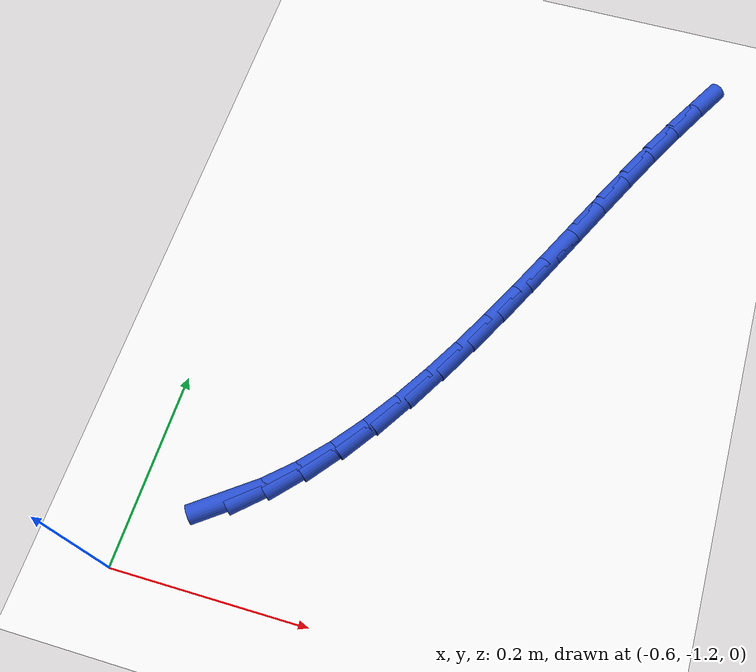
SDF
<sdf version="1.6">
 <world name="default">
  <model name="ground_plane">
   <static>1</static>
   <link name="link">
    <collision name="collision">
     <geometry><plane><normal>0 0 1</normal><size>100 100</size></plane></geometry>
     <surface><friction><ode><mu>100</mu><mu2>50</mu2></ode></friction></surface>
    </collision>
    <visual name="visual">
     <cast_shadows>0</cast_shadows>
     <geometry><plane><normal>0 0 1</normal><size>100 100</size></plane></geometry>
     <material>
      <script><uri>file://media/materials/scripts/gazebo.material</uri><name>Gazebo/WhiteGlow</name></script>
     </material>
    </visual>
   </link>
  </model>
  <model name="line">
   <link name="link_169">
    <pose>-0.5123955180694747 -1.110039654873815 0.01 0 1.57 0.6425896060567059</pose>
    <collision name="collision">
     <geometry><cylinder><radius>0.01</radius><length>0.08</length></cylinder></geometry>
    </collision>
    <visual name="visual">
     <material>
      <script><name>Gazebo/Blue</name><uri>file://media/materials/scripts/gazebo.material</uri></script>
     </material>
     <geometry><cylinder><radius>0.01</radius><length>0.08</length></cylinder></geometry>
    </visual>
   </link>
   <link name="link_170">
    <pose>-0.4833755044960828 -1.0883159474410775 0.01 0 1.57 0.7493679944679658</pose>
    <collision name="collision">
     <geometry><cylinder><radius>0.01</radius><length>0.08</length></cylinder></geometry>
    </collision>
    <visual name="visual">
     <material>
      <script><name>Gazebo/Blue</name><uri>file://media/materials/scripts/gazebo.material</uri></script>
     </material>
     <geometry><cylinder><radius>0.01</radius><length>0.08</length></cylinder></geometry>
    </visual>
   </link>
   <link name="link_171">
    <pose>-0.45597345200621886 -1.0628206215873353 0.01 0 1.57 0.8389481287155681</pose>
    <collision name="collision">
     <geometry><cylinder><radius>0.01</radius><length>0.08</length></cylinder></geometry>
    </collision>
    <visual name="visual">
     <material>
      <script><name>Gazebo/Blue</name><uri>file://media/materials/scripts/gazebo.material</uri></script>
     </material>
     <geometry><cylinder><radius>0.01</radius><length>0.08</length></cylinder></geometry>
    </visual>
   </link>
   <link name="link_172">
    <pose>-0.43004970055857 -1.0339603818869214 0.01 0 1.57 0.9129445771132028</pose>
    <collision name="collision">
     <geometry><cylinder><radius>0.01</radius><length>0.08</length></cylinder></geometry>
    </collision>
    <visual name="visual">
     <material>
      <script><name>Gazebo/Blue</name><uri>file://media/materials/scripts/gazebo.material</uri></script>
     </material>
     <geometry><cylinder><radius>0.01</radius><length>0.08</length></cylinder></geometry>
    </visual>
   </link>
   <link name="link_173">
    <pose>-0.4054645901118232 -1.0021419329141692 0.01 0 1.57 0.9733300275595743</pose>
    <collision name="collision">
     <geometry><cylinder><radius>0.01</radius><length>0.08</length></cylinder></geometry>
    </collision>
    <visual name="visual">
     <material>
      <script><name>Gazebo/Blue</name><uri>file://media/materials/scripts/gazebo.material</uri></script>
     </material>
     <geometry><cylinder><radius>0.01</radius><length>0.08</length></cylinder></geometry>
    </visual>
   </link>
   <link name="link_174">
    <pose>-0.3820784606246655 -0.9677719792434114 0.01 0 1.57 1.0220029636152204</pose>
    <collision name="collision">
     <geometry><cylinder><radius>0.01</radius><length>0.08</length></cylinder></geometry>
    </collision>
    <visual name="visual">
     <material>
      <script><name>Gazebo/Blue</name><uri>file://media/materials/scripts/gazebo.material</uri></script>
     </material>
     <geometry><cylinder><radius>0.01</radius><length>0.08</length></cylinder></geometry>
    </visual>
   </link>
   <link name="link_175">
    <pose>-0.3597516520557842 -0.9312572254489815 0.01 0 1.57 1.060595578428421</pose>
    <collision name="collision">
     <geometry><cylinder><radius>0.01</radius><length>0.08</length></cylinder></geometry>
    </collision>
    <visual name="visual">
     <material>
      <script><name>Gazebo/Blue</name><uri>file://media/materials/scripts/gazebo.material</uri></script>
     </material>
     <geometry><cylinder><radius>0.01</radius><length>0.08</length></cylinder></geometry>
    </visual>
   </link>
   <link name="link_176">
    <pose>-0.3383445043638662 -0.8930043761052123 0.01 0 1.57 1.090415544591562</pose>
    <collision name="collision">
     <geometry><cylinder><radius>0.01</radius><length>0.08</length></cylinder></geometry>
    </collision>
    <visual name="visual">
     <material>
      <script><name>Gazebo/Blue</name><uri>file://media/materials/scripts/gazebo.material</uri></script>
     </material>
     <geometry><cylinder><radius>0.01</radius><length>0.08</length></cylinder></geometry>
    </visual>
   </link>
   <link name="link_177">
    <pose>-0.3177173575075986 -0.8534201357864368 0.01 0 1.57 1.112448568178999</pose>
    <collision name="collision">
     <geometry><cylinder><radius>0.01</radius><length>0.08</length></cylinder></geometry>
    </collision>
    <visual name="visual">
     <material>
      <script><name>Gazebo/Blue</name><uri>file://media/materials/scripts/gazebo.material</uri></script>
     </material>
     <geometry><cylinder><radius>0.01</radius><length>0.08</length></cylinder></geometry>
    </visual>
   </link>
   <link name="link_178">
    <pose>-0.29773055144566857 -0.8129112090669883 0.01 0 1.57 1.1273809290688734</pose>
    <collision name="collision">
     <geometry><cylinder><radius>0.01</radius><length>0.08</length></cylinder></geometry>
    </collision>
    <visual name="visual">
     <material>
      <script><name>Gazebo/Blue</name><uri>file://media/materials/scripts/gazebo.material</uri></script>
     </material>
     <geometry><cylinder><radius>0.01</radius><length>0.08</length></cylinder></geometry>
    </visual>
   </link>
   <link name="link_179">
    <pose>-0.27824442613676303 -0.7718843005211997 0.01 0 1.57 1.1356216378656072</pose>
    <collision name="collision">
     <geometry><cylinder><radius>0.01</radius><length>0.08</length></cylinder></geometry>
    </collision>
    <visual name="visual">
     <material>
      <script><name>Gazebo/Blue</name><uri>file://media/materials/scripts/gazebo.material</uri></script>
     </material>
     <geometry><cylinder><radius>0.01</radius><length>0.08</length></cylinder></geometry>
    </visual>
   </link>
   <link name="link_180">
    <pose>-0.2591193215395692 -0.730746114723404 0.01 0 1.57 1.1373144618208815</pose>
    <collision name="collision">
     <geometry><cylinder><radius>0.01</radius><length>0.08</length></cylinder></geometry>
    </collision>
    <visual name="visual">
     <material>
      <script><name>Gazebo/Blue</name><uri>file://media/materials/scripts/gazebo.material</uri></script>
     </material>
     <geometry><cylinder><radius>0.01</radius><length>0.08</length></cylinder></geometry>
    </visual>
   </link>
   <link name="link_181">
    <pose>-0.24021557761277404 -0.6899033562479346 0.01 0 1.57 1.132334682048366</pose>
    <collision name="collision">
     <geometry><cylinder><radius>0.01</radius><length>0.08</length></cylinder></geometry>
    </collision>
    <visual name="visual">
     <material>
      <script><name>Gazebo/Blue</name><uri>file://media/materials/scripts/gazebo.material</uri></script>
     </material>
     <geometry><cylinder><radius>0.01</radius><length>0.08</length></cylinder></geometry>
    </visual>
   </link>
   <link name="link_182">
    <pose>-0.22139353431506478 -0.6497627296691244 0.01 0 1.57 1.1202667777798876</pose>
    <collision name="collision">
     <geometry><cylinder><radius>0.01</radius><length>0.08</length></cylinder></geometry>
    </collision>
    <visual name="visual">
     <material>
      <script><name>Gazebo/Blue</name><uri>file://media/materials/scripts/gazebo.material</uri></script>
     </material>
     <geometry><cylinder><radius>0.01</radius><length>0.08</length></cylinder></geometry>
    </visual>
   </link>
   <link name="link_183">
    <pose>-0.2025135316051284 -0.6107309395613064 0.01 0 1.57 1.1005281346074278</pose>
    <collision name="collision">
     <geometry><cylinder><radius>0.01</radius><length>0.08</length></cylinder></geometry>
    </collision>
    <visual name="visual">
     <material>
      <script><name>Gazebo/Blue</name><uri>file://media/materials/scripts/gazebo.material</uri></script>
     </material>
     <geometry><cylinder><radius>0.01</radius><length>0.08</length></cylinder></geometry>
    </visual>
   </link>
   <link name="link_184">
    <pose>-0.18343999655980037 -0.5732070170023178 0.01 0 1.57 1.0791689632811927</pose>
    <collision name="collision">
     <geometry><cylinder><radius>0.01</radius><length>0.08</length></cylinder></geometry>
    </collision>
    <visual name="visual">
     <material>
      <script><name>Gazebo/Blue</name><uri>file://media/materials/scripts/gazebo.material</uri></script>
     </material>
     <geometry><cylinder><radius>0.01</radius><length>0.08</length></cylinder></geometry>
    </visual>
   </link>
   <link name="link_185">
    <pose>-0.16420212755353247 -0.5372806376931796 0.01 0 1.57 1.0657543152321347</pose>
    <collision name="collision">
     <geometry><cylinder><radius>0.01</radius><length>0.08</length></cylinder></geometry>
    </collision>
    <visual name="visual">
     <material>
      <script><name>Gazebo/Blue</name><uri>file://media/materials/scripts/gazebo.material</uri></script>
     </material>
     <geometry><cylinder><radius>0.01</radius><length>0.08</length></cylinder></geometry>
    </visual>
   </link>
  </model>
 </world>
</sdf>
